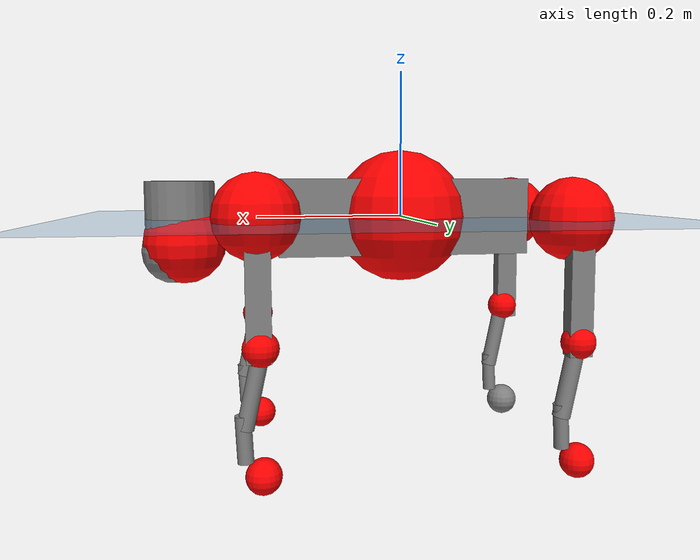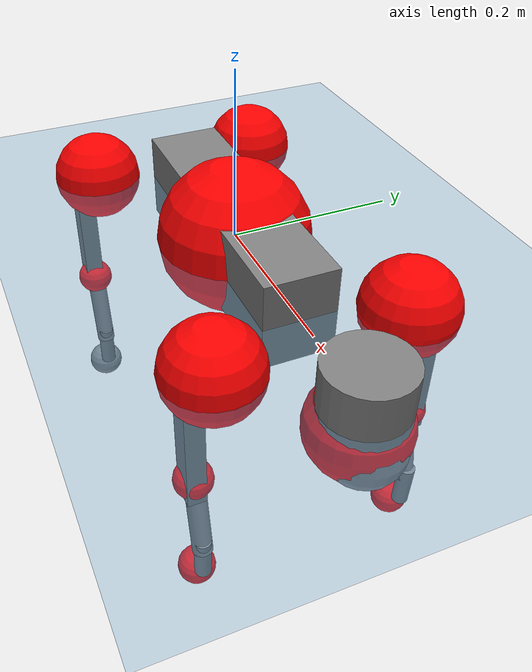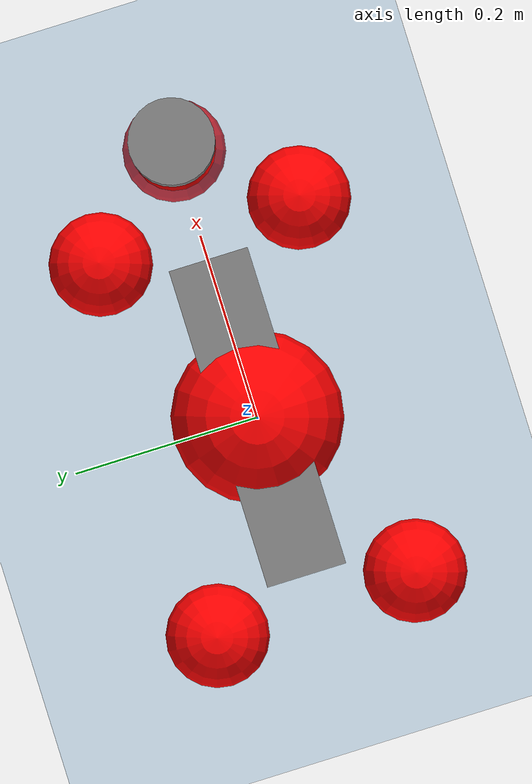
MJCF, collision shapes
<mujoco model="go2">
  <compiler angle="radian" assetdir="assets" balanceinertia="true" inertiafromgeom="false"/>

  <option timestep="0.005" density="1.2" viscosity="2e-05"/>

  <size nkey="1"/>

  <visual>
    <quality shadowsize="8192"/>
    <map shadowclip="0.5"/>
  </visual>

  <default>
    <default class="/">
      <geom contype="0" conaffinity="0" group="1" solref="-1000 -80"/>
      <site size="0.01 0.005 0.005" group="5"/>
      <general forcelimited="true" biastype="affine" gainprm="20" biasprm="0 -20 -0.5"/>
      <default class="go2">
        <joint armature="0.01" damping="0.01" frictionloss="0.2"/>
        <geom condim="1" margin="0.001"/>
        <default class="visual">
          <geom type="mesh" group="2"/>
        </default>
        <default class="collision">
          <geom group="3"/>
          <default class="foot">
            <geom size="0.022 0 0" condim="6" priority="1" friction="0.8 0.02 0.01" solimp="0.015 1 0.022"/>
          </default>
        </default>
        <default class="reward_collision_sphere">
          <geom group="5" rgba="1 0 0 1"/>
        </default>
      </default>
    </default>
  </default>

  <asset>
    <texture type="skybox" colorspace="auto" name="//unnamed_texture_0" builtin="gradient" rgb1="0.95 0.95 0.95" rgb2="0.95 0.95 0.95" width="100" height="600"/>
    <texture type="2d" colorspace="auto" name="texplane" builtin="checker" rgb1="0.345 0.575 0.748" rgb2="0.345 0.575 0.748" markrgb="1 1 1" width="512" height="512"/>
    <material name="MatPlane" class="/" texture="texplane" texuniform="true" texrepeat="2 2" specular="0.9"/>
    <material name="metal" class="/" rgba="0.9 0.95 0.95 1"/>
    <material name="black" class="/" rgba="0 0 0 1"/>
    <material name="white" class="/"/>
    <material name="gray" class="/" rgba="0.671705 0.692426 0.77427 1"/>
    <mesh name="base_0" class="/" file="base_0.obj"/>
    <mesh name="base_1" class="/" file="base_1.obj"/>
    <mesh name="base_2" class="/" file="base_2.obj"/>
    <mesh name="base_3" class="/" file="base_3.obj"/>
    <mesh name="base_4" class="/" file="base_4.obj"/>
    <mesh name="hip_0" class="/" file="hip_0.obj"/>
    <mesh name="hip_1" class="/" file="hip_1.obj"/>
    <mesh name="thigh_0" class="/" file="thigh_0.obj"/>
    <mesh name="thigh_1" class="/" file="thigh_1.obj"/>
    <mesh name="thigh_mirror_0" class="/" file="thigh_mirror_0.obj"/>
    <mesh name="thigh_mirror_1" class="/" file="thigh_mirror_1.obj"/>
    <mesh name="calf_0" class="/" file="calf_0.obj"/>
    <mesh name="calf_1" class="/" file="calf_1.obj"/>
    <mesh name="calf_mirror_0" class="/" file="calf_mirror_0.obj"/>
    <mesh name="calf_mirror_1" class="/" file="calf_mirror_1.obj"/>
    <mesh name="foot" class="/" file="foot.obj"/>
  </asset>

  <worldbody>
    <geom name="floor" class="/" size="100 100 0.125" type="plane" group="0" material="MatPlane"/>
    <light name="toplight_shadow" class="/" pos="0 0 5" dir="0.0990148 0.0990148 -0.990148" type="directional" ambient="0.04 0.04 0.04" diffuse="0.55 0.55 0.55" specular="0.12 0.12 0.12"/>
    <light name="toplight_fill" class="/" pos="0 0 5" dir="0.0990148 0.0990148 -0.990148" type="directional" castshadow="false" ambient="0.04 0.04 0.04" diffuse="0.3 0.3 0.3" specular="0.08 0.08 0.08"/>
    <body name="trunk" childclass="go2" pos="0.000380702 -0.000235995 0.000571204" quat="1 -2.70052e-05 -4.42389e-05 3.09221e-05">
      <inertial pos="0.023423 -0.0038976 -0.00546615" quat="-0.00121739 0.713258 -0.00223246 0.700897" mass="5.38324" diaginertia="0.13423 0.0721133 0.0056893"/>
      <joint name="//unnamed_joint_0" type="free" armature="0" damping="0" frictionloss="0"/>
      <geom name="//unnamed_geom_1" class="visual" material="black" mesh="base_0"/>
      <geom name="//unnamed_geom_2" class="visual" material="black" mesh="base_1"/>
      <geom name="//unnamed_geom_3" class="visual" material="black" mesh="base_2"/>
      <geom name="//unnamed_geom_4" class="visual" material="white" mesh="base_3"/>
      <geom name="//unnamed_geom_5" class="visual" material="gray" mesh="base_4"/>
      <geom name="trunk_1" class="collision" size="0.172297 0.0428223 0.0522112" type="box"/>
      <geom name="trunk_2" class="collision" size="0.0457993 0.0412194" pos="0.301234 0 0.00750391" type="cylinder"/>
      <geom name="trunk_3" class="collision" size="0.0430513" pos="0.30969 0 -0.0450234"/>
      <geom name="//unnamed_geom_9" class="reward_collision_sphere" size="0.0915986"/>
      <geom name="//unnamed_geom_10" class="reward_collision_sphere" size="0.0549591" pos="0.29595 0 -0.0337676"/>
      <site name="imu" pos="-0.0157119 -0.00463571 0.0423761" size="0.00915986"/>
      <camera name="track" pos="0 -1.88121 0" quat="0.707107 0.707107 0 0" mode="trackcom"/>
      <camera name="ego_camera" pos="0.329772 0 0.0337676" quat="-0.5 -0.5 0.5 0.5"/>
      <body name="FL_hip" pos="0.202258 0.0436179 0.00552042" quat="0.999999 -0.000640586 -0.00010384 0.000853649">
        <inertial pos="-0.00325726 0.00171759 -0.00127169" quat="0.49262 0.508307 0.502347 0.496585" mass="0.489219" diaginertia="0.00113182 0.000419635 0.000111726"/>
        <joint name="FL_hip_joint" pos="0 0 0" axis="0.999994 -0.00308397 -0.00164039" stiffness="0.0045104" range="-1.08442 1.05171" armature="0.00934188" damping="0.0117121" frictionloss="0.201519"/>
        <geom name="//unnamed_geom_11" class="visual" material="metal" mesh="hip_0"/>
        <geom name="//unnamed_geom_12" class="visual" material="gray" mesh="hip_1"/>
        <geom name="//unnamed_geom_13" class="collision" size="0.0421353 0.0183197" pos="0 0.0752483 0" quat="0.707107 0.707107 0 0" type="cylinder"/>
        <geom name="//unnamed_geom_14" class="reward_collision_sphere" size="0.0549591" pos="0 0.0658422 0"/>
        <body name="FL_thigh" pos="-0.000468864 0.0891431 0.00215357" quat="1 0.000609886 -0.000142438 -0.00011698">
          <inertial pos="-0.00391451 -0.0202917 -0.025515" quat="0.829846 0.0860549 -0.0216218 0.550892" mass="0.945233" diaginertia="0.00775816 0.00437568 0.00022862"/>
          <joint name="FL_thigh_joint" pos="0 0 0" axis="0.00107742 0.999978 -0.00651825" range="-1.57276 3.5274" armature="0.0101781" damping="0.00536097" frictionloss="0.197385"/>
          <geom name="//unnamed_geom_15" class="visual" material="metal" mesh="thigh_0"/>
          <geom name="//unnamed_geom_16" class="visual" material="gray" mesh="thigh_1"/>
          <geom name="//unnamed_geom_17" class="collision" size="0.0975525 0.0112208 0.0155718" pos="0 0 -0.0799166" quat="0.707107 0 0.707107 0" type="box"/>
          <body name="FL_calf" pos="-0.00225635 -0.000462912 -0.160894" quat="0.999998 -2.00005e-05 -0.00145966 -0.000943709">
            <inertial pos="0.00573753 -0.00057143 -0.104894" quat="0.711711 0.00168569 -0.0057134 0.702447" mass="0.182553" diaginertia="0.00195985 0.00111111 1.29612e-05"/>
            <joint name="FL_calf_joint" pos="0 0 0" axis="0.000766948 0.999994 -0.0034994" stiffness="0.00652621" range="-2.69022 -0.881637" armature="0.00842705" damping="0" frictionloss="0.188687"/>
            <geom name="//unnamed_geom_18" class="visual" material="gray" mesh="calf_0"/>
            <geom name="//unnamed_geom_19" class="visual" material="black" mesh="calf_1"/>
            <geom name="FL_calf0" class="collision" size="0.0109918 0.0549591" pos="0.0084557 0 -0.0450234" quat="0.994493 0 -0.104807 0" type="cylinder"/>
            <geom name="//unnamed_geom_21" class="collision" size="0.0100758 0.0297695" pos="0.0211393 0 -0.111058" quat="0.999688 0 0.0249974 0" type="cylinder"/>
            <geom name="//unnamed_geom_22" class="visual" pos="0 0 -0.159833" quat="1 0 0 0" material="black" mesh="foot"/>
            <geom name="FL_foot" class="foot" size="0.0167909" pos="-0.00211393 0 -0.159833"/>
            <geom name="//unnamed_geom_24" class="reward_collision_sphere" size="0.0228996"/>
            <geom name="//unnamed_geom_25" class="reward_collision_sphere" size="0.0228996" pos="-0.00211393 0 -0.159833"/>
            <site name="FL_foot" class="foot" pos="-0.00211393 0 -0.159833" size="0.00915986"/>
          </body>
        </body>
      </body>
      <body name="FR_hip" pos="0.207366 -0.0447723 0.000159982" quat="1 -0.00018182 -0.000565048 0.000472339">
        <inertial pos="-0.00528122 -0.000422848 -0.0028301" quat="0.500382 0.502227 0.498889 0.498493" mass="0.55638" diaginertia="0.00119222 0.000447129 0.000113883"/>
        <joint name="FR_hip_joint" pos="0 0 0" axis="0.999991 0.000436454 0.00429794" stiffness="0.00508798" range="-1.07513 1.11523" armature="0.00930525" damping="0.0208589" frictionloss="0.18184"/>
        <geom name="//unnamed_geom_26" class="visual" pos="0 1.65705e-09 7.10744e-08" quat="4.63268e-05 1 0 0" material="metal" mesh="hip_0"/>
        <geom name="//unnamed_geom_27" class="visual" pos="0 2.68628e-09 -1.75794e-07" quat="4.63268e-05 1 0 0" material="gray" mesh="hip_1"/>
        <geom name="//unnamed_geom_28" class="collision" size="0.0421353 0.0183197" pos="0 -0.0752483 0" quat="0.707107 0.707107 0 0" type="cylinder"/>
        <geom name="//unnamed_geom_29" class="reward_collision_sphere" size="0.0549591" pos="0 -0.0658422 0"/>
        <body name="FR_thigh" pos="-0.00451937 -0.0897059 0.00220589" quat="0.999999 -0.000802556 0.000933996 0.000153584">
          <inertial pos="-0.00306068 0.0188597 -0.0241927" quat="0.550876 -0.0193935 0.0808056 0.83044" mass="0.817323" diaginertia="0.00767841 0.00394775 0.000202243"/>
          <joint name="FR_thigh_joint" pos="0 0 0" axis="-0.021016 -0.999754 0.00704463" stiffness="0.00528559" range="-3.5927 1.63797" armature="0.00903913" damping="0.0136022" frictionloss="0.160381"/>
          <geom name="//unnamed_geom_30" class="visual" material="metal" mesh="thigh_mirror_0"/>
          <geom name="//unnamed_geom_31" class="visual" material="gray" mesh="thigh_mirror_1"/>
          <geom name="//unnamed_geom_32" class="collision" size="0.0975525 0.0112208 0.0155718" pos="0 0 -0.0799166" quat="0.707107 0 0.707107 0" type="box"/>
          <body name="FR_calf" pos="-0.00355017 0.00268542 -0.158669" quat="0.999999 0.000710744 0.000462805 -0.000909691">
            <inertial pos="0.00472367 -0.00191842 -0.110594" quat="0.712098 -0.00542338 0.00309363 0.702052" mass="0.19605" diaginertia="0.00195992 0.00106732 1.25312e-05"/>
            <joint name="FR_calf_joint" pos="0 0 0" axis="-0.0283819 -0.999568 -0.00760306" range="0.886436 2.76096" armature="0.00904248" damping="0.0144208" frictionloss="0.229987"/>
            <geom name="//unnamed_geom_33" class="visual" material="gray" mesh="calf_mirror_0"/>
            <geom name="//unnamed_geom_34" class="visual" material="black" mesh="calf_mirror_1"/>
            <geom name="FR_calf0" class="collision" size="0.0119078 0.0549591" pos="0.0105696 0 -0.0450234" quat="0.995004 0 -0.0998334 0" type="cylinder"/>
            <geom name="//unnamed_geom_36" class="collision" size="0.0100758 0.0297695" pos="0.0211393 0 -0.111058" quat="0.999688 0 0.0249974 0" type="cylinder"/>
            <geom name="//unnamed_geom_37" class="visual" pos="0 0 -0.159833" quat="1 0 0 0" material="black" mesh="foot"/>
            <geom name="FR_foot" class="foot" size="0.0218777" pos="-0.00211393 0 -0.159833"/>
            <geom name="//unnamed_geom_39" class="reward_collision_sphere" size="0.0228996"/>
            <geom name="//unnamed_geom_40" class="reward_collision_sphere" size="0.0228996" pos="-0.00211393 0 -0.159833"/>
            <site name="FR_foot" class="foot" pos="-0.00211393 0 -0.159833" size="0.00915986"/>
          </body>
        </body>
      </body>
      <body name="RL_hip" pos="-0.207301 0.0426218 -0.000655117" quat="0.999999 0.000365944 0.00149948 -3.56346e-05">
        <inertial pos="0.0043479 0.00408428 0.00257136" quat="0.512645 0.494553 0.513934 0.478" mass="0.554441" diaginertia="0.00119608 0.000437553 0.00011144"/>
        <joint name="RL_hip_joint" pos="0 0 0" axis="-0.999999 0.000863021 -0.000544879" stiffness="0.00763028" range="-0.996502 1.02007" armature="0.00904152" damping="0.00666816" frictionloss="0.194153"/>
        <geom name="//unnamed_geom_41" class="visual" pos="-2.67073e-09 0 -5.23525e-07" quat="4.63268e-05 0 1 0" material="metal" mesh="hip_0"/>
        <geom name="//unnamed_geom_42" class="visual" pos="-4.32957e-09 0 -4.64292e-07" quat="4.63268e-05 0 1 0" material="gray" mesh="hip_1"/>
        <geom name="//unnamed_geom_43" class="collision" size="0.0421353 0.0183197" pos="0 0.0752483 0" quat="0.707107 0.707107 0 0" type="cylinder"/>
        <geom name="//unnamed_geom_44" class="reward_collision_sphere" size="0.0549591" pos="0 0.0658422 0"/>
        <body name="RL_thigh" pos="-0.000978388 0.091672 0.000328383" quat="1 -0.000229675 0.00027029 0.000428465">
          <inertial pos="-0.00608963 -0.0204401 -0.0246561" quat="0.834704 0.0846261 -0.023811 0.543637" mass="0.864461" diaginertia="0.00728407 0.00406774 0.000203402"/>
          <joint name="RL_thigh_joint" pos="0 0 0" axis="-0.0142388 0.999844 -0.0104143" stiffness="0.00390157" range="-0.532998 4.52721" armature="0.00913467" damping="0" frictionloss="0.18421"/>
          <geom name="//unnamed_geom_45" class="visual" material="metal" mesh="thigh_0"/>
          <geom name="//unnamed_geom_46" class="visual" material="gray" mesh="thigh_1"/>
          <geom name="//unnamed_geom_47" class="collision" size="0.0975525 0.0112208 0.0155718" pos="0 0 -0.0799166" quat="0.707107 0 0.707107 0" type="box"/>
          <body name="RL_calf" pos="-0.0012851 -0.00104524 -0.159971" quat="1 -0.000548484 -0.000639021 -0.000279211">
            <inertial pos="0.00537667 -0.00271409 -0.105789" quat="0.710807 0.00192536 -0.00450372 0.70337" mass="0.178185" diaginertia="0.00177157 0.00096158 1.09227e-05"/>
            <joint name="RL_calf_joint" pos="0 0 0" axis="0.00120397 0.999998 0.00180382" stiffness="0.00218303" range="-2.72401 -0.72265" armature="0.00959063" damping="0" frictionloss="0.196189"/>
            <geom name="//unnamed_geom_48" class="visual" material="gray" mesh="calf_0"/>
            <geom name="//unnamed_geom_49" class="visual" material="black" mesh="calf_1"/>
            <geom name="RL_calf0" class="collision" size="0.0119078 0.0549591" pos="0.0105696 0 -0.0450234" quat="0.995004 0 -0.0998334 0" type="cylinder"/>
            <geom name="//unnamed_geom_51" class="collision" size="0.0100758 0.0297695" pos="0.0211393 0 -0.111058" quat="0.999688 0 0.0249974 0" type="cylinder"/>
            <geom name="//unnamed_geom_52" class="visual" pos="0 0 -0.159833" quat="1 0 0 0" material="black" mesh="foot"/>
            <geom name="RL_foot" class="foot" size="0.0225888" pos="-0.00211393 0 -0.159833"/>
            <geom name="//unnamed_geom_54" class="reward_collision_sphere" size="0.0228996"/>
            <geom name="//unnamed_geom_55" class="reward_collision_sphere" size="0.0228996" pos="-0.00211393 0 -0.159833"/>
            <site name="RL_foot" class="foot" pos="-0.00211393 0 -0.159833" size="0.00915986"/>
          </body>
        </body>
      </body>
      <body name="RR_hip" pos="-0.203685 -0.0445442 -0.00088667" quat="0.999999 -0.00101644 0.000444187 -0.000651303">
        <inertial pos="0.00814765 -0.000246361 -0.00180818" quat="0.504127 0.479586 0.493136 0.522178" mass="0.504764" diaginertia="0.00117056 0.000431421 0.000114062"/>
        <joint name="RR_hip_joint" pos="0 0 0" axis="-0.999888 -0.00514261 0.01402" range="-1.00294 1.09862" armature="0.0104846" damping="0.0133116" frictionloss="0.185778"/>
        <geom name="//unnamed_geom_56" class="visual" pos="2.6667e-09 1.65705e-09 -5.94599e-07" quat="2.14617e-09 4.63268e-05 4.63268e-05 -1" material="metal" mesh="hip_0"/>
        <geom name="//unnamed_geom_57" class="visual" pos="4.33954e-09 2.68628e-09 -2.88498e-07" quat="2.14617e-09 4.63268e-05 4.63268e-05 -1" material="gray" mesh="hip_1"/>
        <geom name="//unnamed_geom_58" class="collision" size="0.0421353 0.0183197" pos="0 -0.0752483 0" quat="0.707107 0.707107 0 0" type="cylinder"/>
        <geom name="//unnamed_geom_59" class="reward_collision_sphere" size="0.0549591" pos="0 -0.0658422 0"/>
        <body name="RR_thigh" pos="-0.0013392 -0.0887451 0.00412003" quat="1 -0.000670541 -0.000128161 -0.000428888">
          <inertial pos="-0.00356619 0.0156914 -0.023762" quat="0.554303 -0.0137626 0.0852557 0.827823" mass="0.951069" diaginertia="0.00827941 0.00459524 0.000218596"/>
          <joint name="RR_thigh_joint" pos="0 0 0" axis="2.08419e-05 -1 -0.000394387" range="-4.49959 0.592608" armature="0.00658472" damping="0.0118791" frictionloss="0.205163"/>
          <geom name="//unnamed_geom_60" class="visual" material="metal" mesh="thigh_mirror_0"/>
          <geom name="//unnamed_geom_61" class="visual" material="gray" mesh="thigh_mirror_1"/>
          <geom name="//unnamed_geom_62" class="collision" size="0.0975525 0.0112208 0.0155718" pos="0 0 -0.0799166" quat="0.707107 0 0.707107 0" type="box"/>
          <body name="RR_calf" pos="0.00457787 0.00152682 -0.159628" quat="1 -9.27131e-05 -0.000135812 0.000374478">
            <inertial pos="0.00793926 0.000757021 -0.105375" quat="0.717958 -0.00206122 0.00261819 0.696079" mass="0.189554" diaginertia="0.00199246 0.00102822 1.16103e-05"/>
            <joint name="RR_calf_joint" pos="0 0 0" axis="-0.0129451 -0.999882 -0.00833104" range="0.805703 2.66751" armature="0.0089205" damping="0.00838706" frictionloss="0.202719"/>
            <geom name="//unnamed_geom_63" class="visual" material="gray" mesh="calf_mirror_0"/>
            <geom name="//unnamed_geom_64" class="visual" material="black" mesh="calf_mirror_1"/>
            <geom name="RR_calf0" class="collision" size="0.0119078 0.0549591" pos="0.0105696 0 -0.0450234" quat="0.995004 0 -0.0998334 0" type="cylinder"/>
            <geom name="//unnamed_geom_66" class="collision" size="0.0100758 0.0297695" pos="0.0211393 0 -0.111058" quat="0.999688 0 0.0249974 0" type="cylinder"/>
            <geom name="//unnamed_geom_67" class="visual" pos="0 0 -0.159833" quat="1 0 0 0" material="black" mesh="foot"/>
            <geom name="RR_foot" class="foot" size="0.0237873" pos="-0.00211393 0 -0.159833"/>
            <geom name="//unnamed_geom_69" class="reward_collision_sphere" size="0.0228996"/>
            <geom name="//unnamed_geom_70" class="reward_collision_sphere" size="0.0228996" pos="-0.00211393 0 -0.159833"/>
            <site name="RR_foot" class="foot" pos="-0.00211393 0 -0.159833" size="0.00915986"/>
          </body>
        </body>
      </body>
    </body>
  </worldbody>

  <contact>
    <pair class="/" geom1="floor" geom2="FL_foot" name="//unnamed_contact_0"/>
    <pair class="/" geom1="floor" geom2="FR_foot" name="//unnamed_contact_1"/>
    <pair class="/" geom1="floor" geom2="RL_foot" name="//unnamed_contact_2"/>
    <pair class="/" geom1="floor" geom2="RR_foot" name="//unnamed_contact_3"/>
  </contact>

  <actuator>
    <general name="FL_hip" class="/" joint="FL_hip_joint" forcerange="-21.0514 21.0514" gainprm="16.6779" biasprm="0 -16.6779 -0.480387"/>
    <general name="FL_thigh" class="/" joint="FL_thigh_joint" forcerange="-25.8052 25.8052" gainprm="16.6779" biasprm="0 -16.6779 -0.480387"/>
    <general name="FL_calf" class="/" joint="FL_calf_joint" forcerange="-45.4456 45.4456" gainprm="16.6779" biasprm="0 -16.6779 -0.480387"/>
    <general name="FR_hip" class="/" joint="FR_hip_joint" forcerange="-19.7619 19.7619" gainprm="16.6779" biasprm="0 -16.6779 -0.480387"/>
    <general name="FR_thigh" class="/" joint="FR_thigh_joint" forcerange="-23.5172 23.5172" gainprm="16.6779" biasprm="0 -16.6779 -0.480387"/>
    <general name="FR_calf" class="/" joint="FR_calf_joint" forcerange="-38.8854 38.8854" gainprm="16.6779" biasprm="0 -16.6779 -0.480387"/>
    <general name="RL_hip" class="/" joint="RL_hip_joint" forcerange="-21.6126 21.6126" gainprm="16.6779" biasprm="0 -16.6779 -0.480387"/>
    <general name="RL_thigh" class="/" joint="RL_thigh_joint" forcerange="-21.6879 21.6879" gainprm="16.6779" biasprm="0 -16.6779 -0.480387"/>
    <general name="RL_calf" class="/" joint="RL_calf_joint" forcerange="-39.7832 39.7832" gainprm="16.6779" biasprm="0 -16.6779 -0.480387"/>
    <general name="RR_hip" class="/" joint="RR_hip_joint" forcerange="-25.613 25.613" gainprm="16.6779" biasprm="0 -16.6779 -0.480387"/>
    <general name="RR_thigh" class="/" joint="RR_thigh_joint" forcerange="-19.8225 19.8225" gainprm="16.6779" biasprm="0 -16.6779 -0.480387"/>
    <general name="RR_calf" class="/" joint="RR_calf_joint" forcerange="-38.3609 38.3609" gainprm="16.6779" biasprm="0 -16.6779 -0.480387"/>
  </actuator>

  <sensor>
    <gyro site="imu" name="imu_angular_velocity"/>
    <velocimeter site="imu" name="imu_linear_velocity"/>
    <framelinvel objtype="site" objname="FL_foot" name="FL_foot_global_linear_velocity"/>
    <framelinvel objtype="site" objname="FR_foot" name="FR_foot_global_linear_velocity"/>
    <framelinvel objtype="site" objname="RL_foot" name="RL_foot_global_linear_velocity"/>
    <framelinvel objtype="site" objname="RR_foot" name="RR_foot_global_linear_velocity"/>
  </sensor>

  <keyframe>
    <key name="home" qpos="0 0 0.325 1 0 0 0 0.1 0.8 -1.5 -0.1 -0.8 1.5 -0.1 0.8 -1.5 0.1 -0.8 1.5"/>
  </keyframe>
</mujoco>
